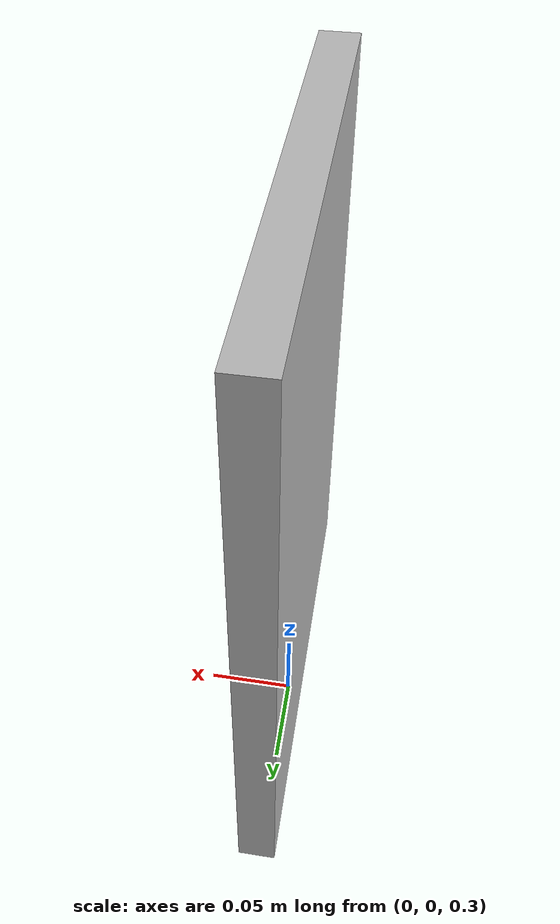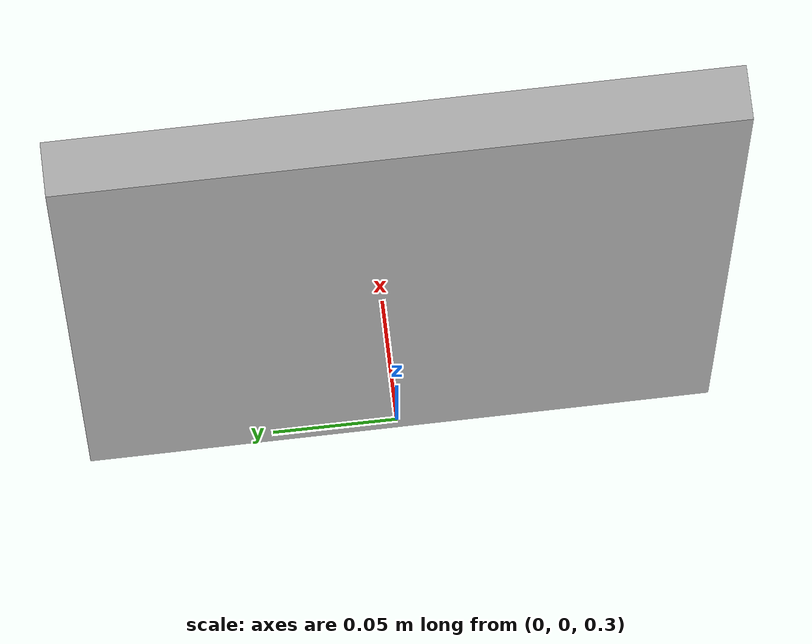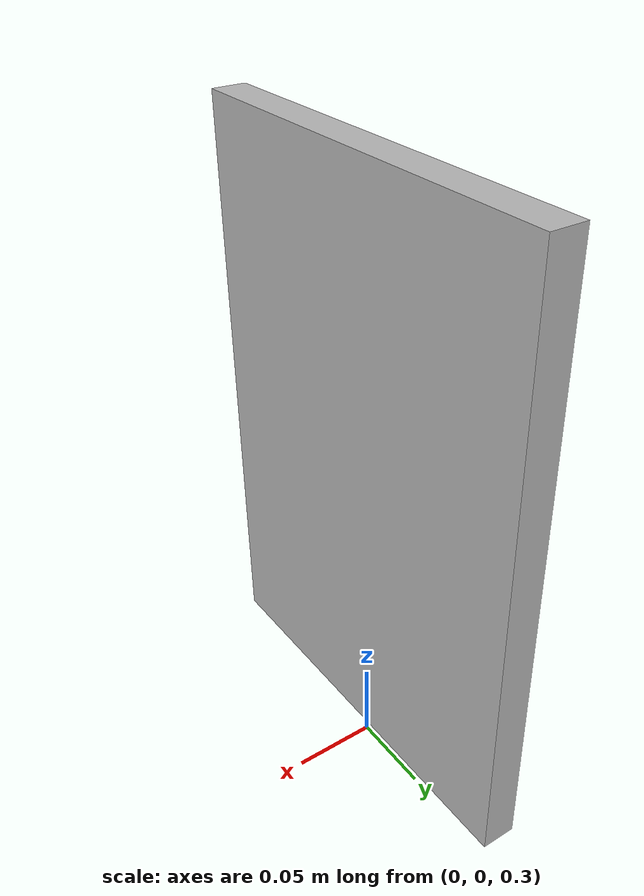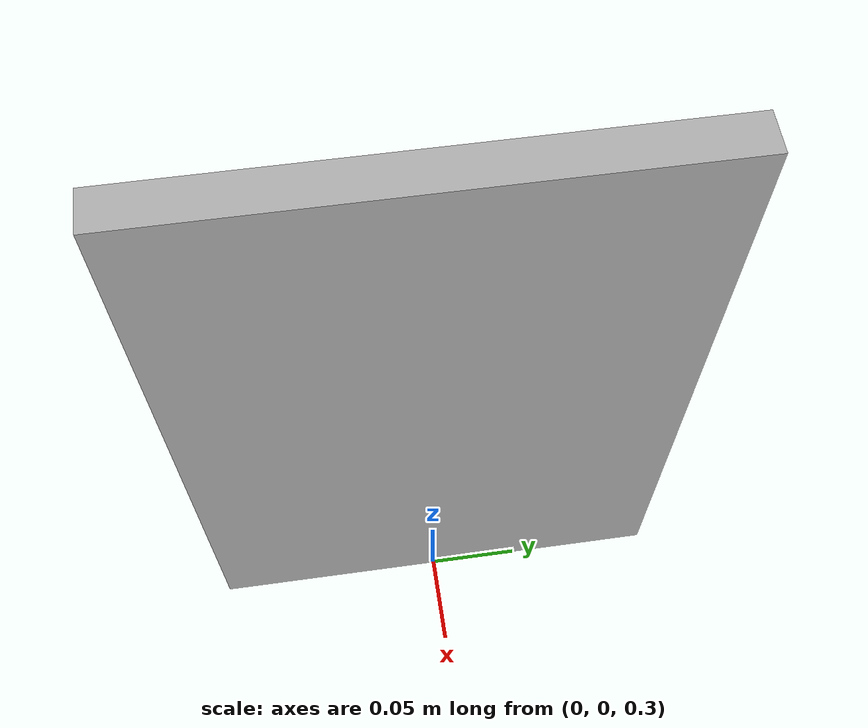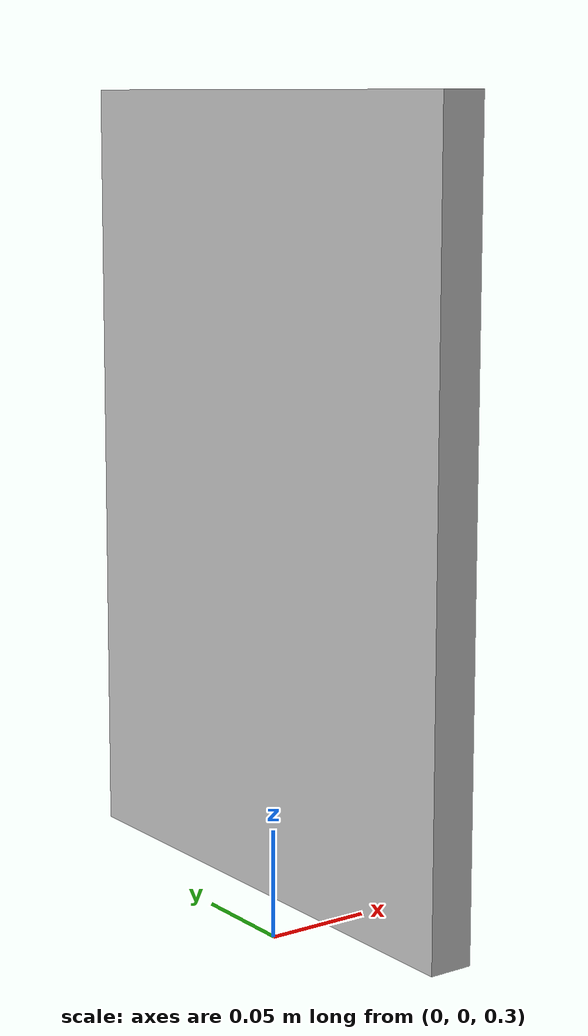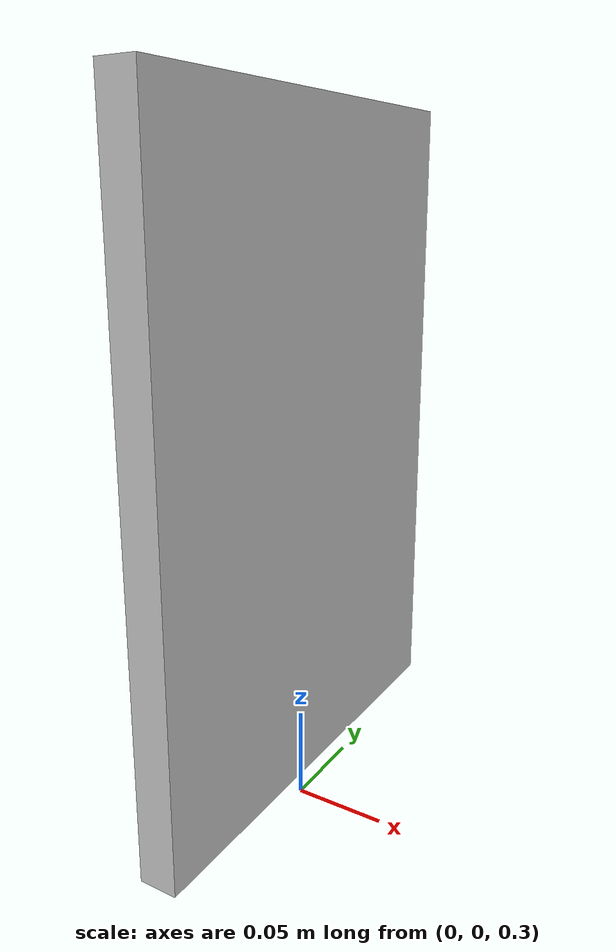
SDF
<?xml version='1.0'?>
<sdf version="1.6">
<model name="yellow">
  <static>true</static>
    <link name="link">
      <visual name="visual">
        <geometry>
          <mesh>
            <uri>model://yellow/meshes/acircles_pattern.dae</uri>
          </mesh>
        </geometry>
      </visual>
    </link>
  </model>
</sdf>
